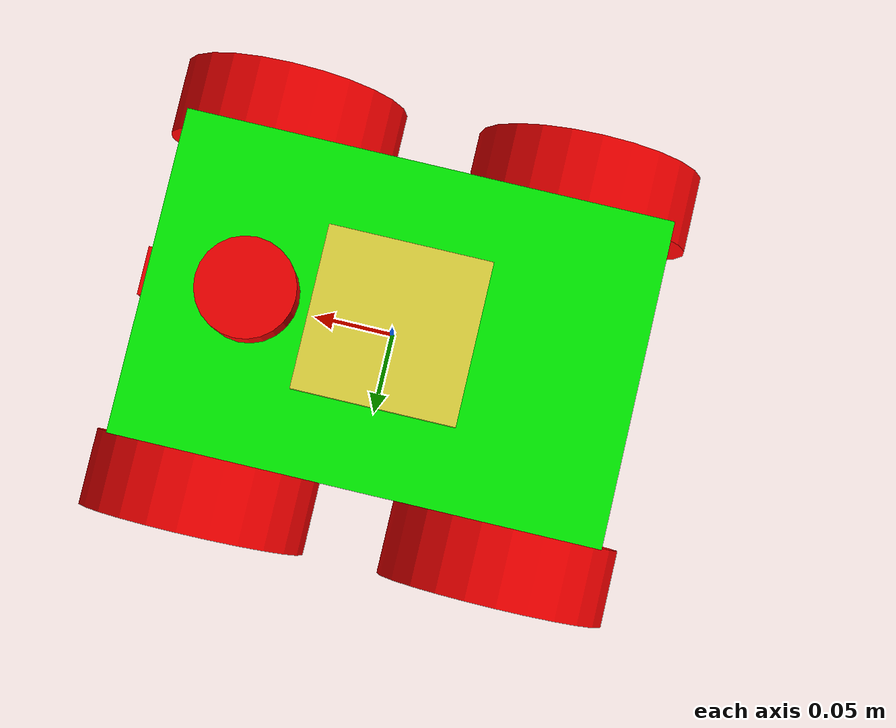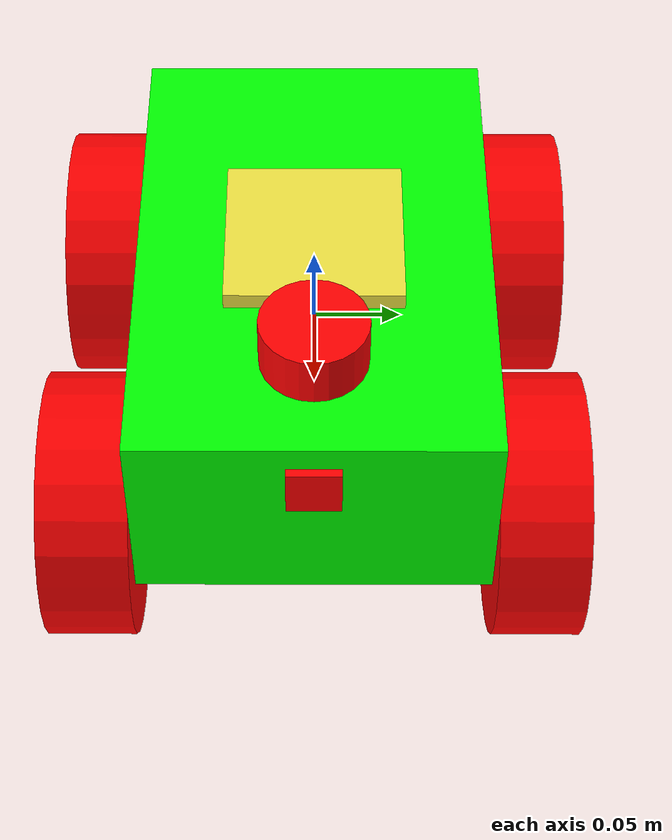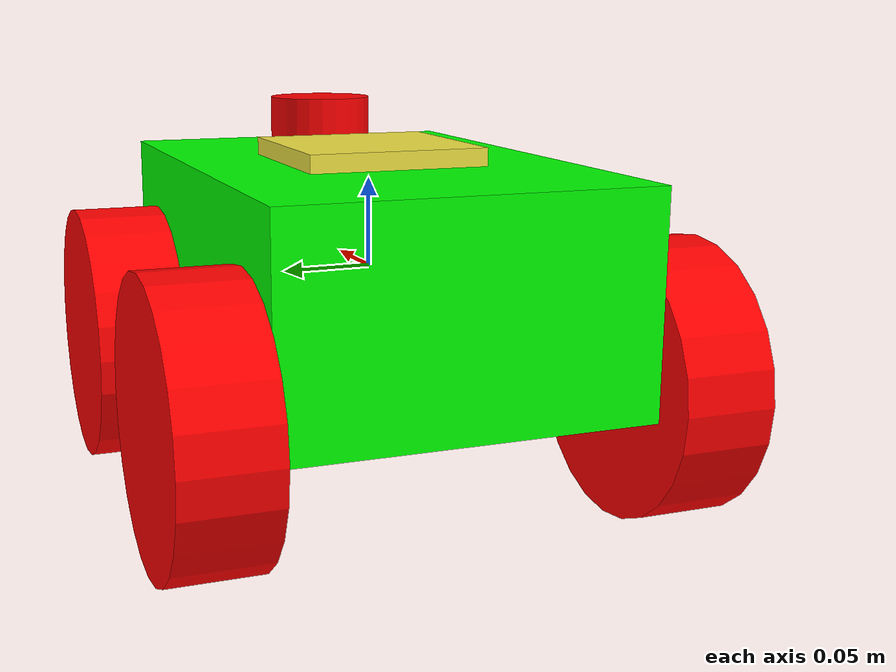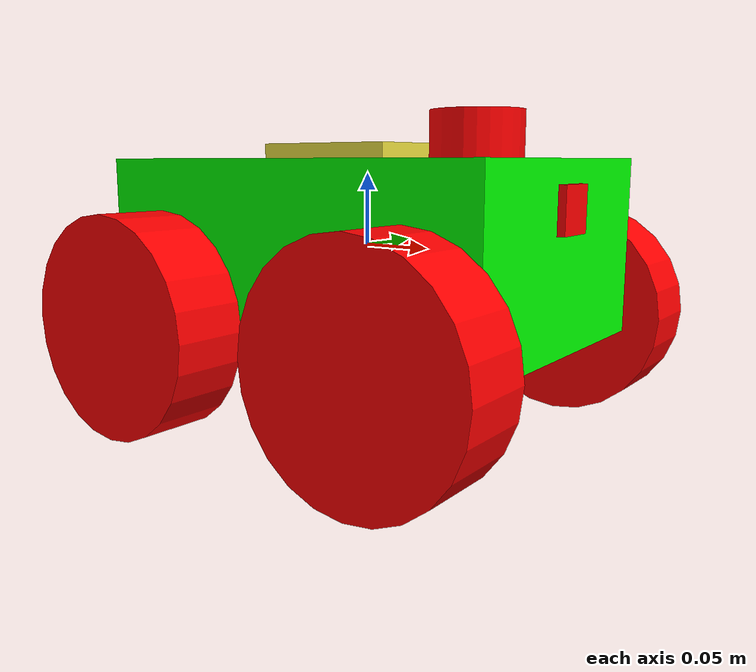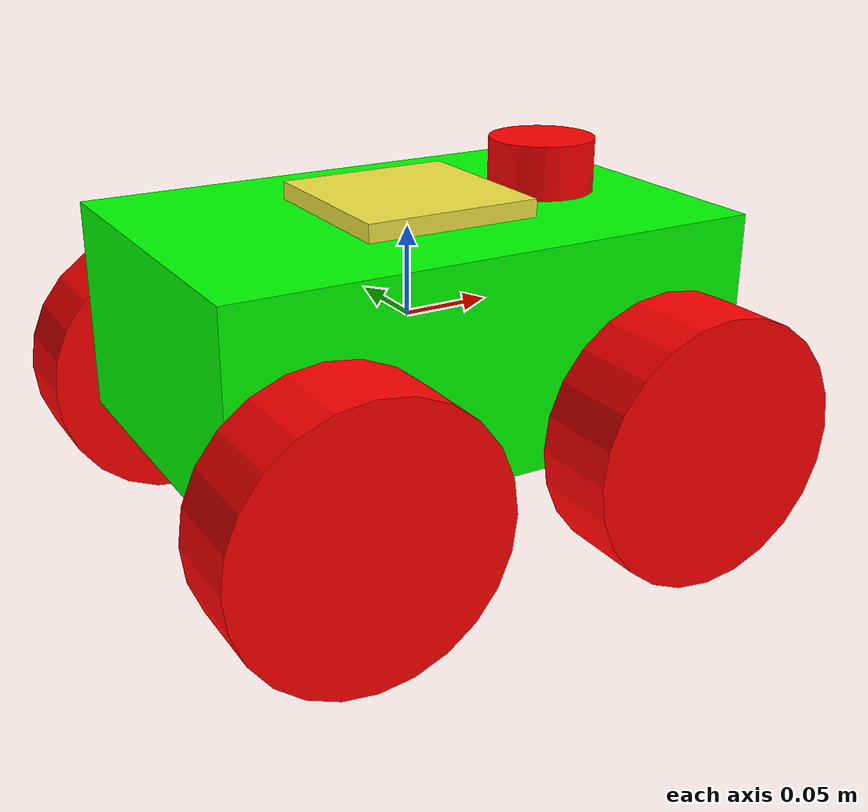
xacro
<?xml version="1.0"?>
<robot xmlns:xacro="http://www.ros.org/wiki/xacro" name="multi_robot">

    <xacro:arg name="robot_name" default="robot1/"/>
    <xacro:arg name="namespace" default="/robot1"/>

    <xacro:arg name="robot_material_name" default="Green"/>
    <xacro:arg name="robot_material_color_rgb" default="0 1 0 1"/>

    <xacro:include filename="$(find multi_robot)/urdf/description2/xacro/inertial_macros.xacro" />
    <xacro:include filename="$(find multi_robot)/urdf/description2/xacro/lidar.xacro" />
    <xacro:include filename="$(find multi_robot)/urdf/description2/xacro/camera.xacro" />
    <xacro:include filename="$(find multi_robot)/urdf/description2/xacro/imu_sensor.xacro" />

    <!-- xacro:include filename="$(find multi_robot)/description/xacro/depth_camera.xacro" / -->

    <xacro:include filename="$(find multi_robot)/urdf/description2/xacro/gazebo_control.xacro" />
    <xacro:include filename="$(find multi_robot)/urdf/description2/xacro/robot_core.xacro" />
</robot>

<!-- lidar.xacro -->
<robot xmlns:xacro="http://www.ros.org/wiki/xacro" >

    <joint name="$(arg robot_name)laser_joint" type="fixed">
        <parent link="$(arg robot_name)base_link"/>
        <child link="$(arg robot_name)lidar_link"/>
        <origin xyz="0.087 0 0.075" rpy="0 0 0"/>
    </joint>

    <link name="$(arg robot_name)lidar_link">
        <visual>
            <geometry>
                <cylinder radius="0.03" length="0.03"/>
            </geometry>
            <material name="red"/>
        </visual>
        <collision>
            <geometry>
                <cylinder radius="0.03" length="0.03"/>
            </geometry>
        </collision>
        <xacro:inertial_cylinder mass="0.1" length="0.04" radius="0.05">
            <origin xyz="0 0 0" rpy="0 0 0"/>
        </xacro:inertial_cylinder>
    </link>
    <gazebo reference="$(arg robot_name)lidar_link">
        <material>Gazebo/Red</material>
        <sensor name="lidar" type="ray">
            <pose> 0 0 0 0 0 0 </pose>
            <always_on>true</always_on>
            <visualize>true</visualize>
            <update_rate>5</update_rate>
            <ray>
                <scan>
                    <horizontal>
                        <samples>360</samples>
                        <min_angle>-3.14</min_angle>
                        <max_angle>3.14</max_angle>
                    </horizontal>
                </scan>
                <range>
                    <min>0.4</min>
                    <max>12</max>
                    <resolution>0.015000</resolution>
                </range>
                <noise>
                    <type>gaussian</type>
                    <mean>0.0</mean>
                    <stddev>0.01</stddev>
                </noise>
            </ray>
            <plugin name="scan" filename="libgazebo_ros_ray_sensor.so">
                <ros>
                    <!-- No remap as name is already "scan", plus I added extra space between dashes -->
                    <remapping>~/out:=$(arg namespace)/scan</remapping>
                    <namespace>$(arg namespace)/lidar</namespace>
                </ros>
                <!-- output_type is LaserScan vs old PointCloud and not a topic -->
                <output_type>sensor_msgs/LaserScan</output_type>
                <frame_name>$(arg robot_name)lidar_link</frame_name>
            </plugin>
        </sensor>
    </gazebo>
</robot>

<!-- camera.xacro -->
<robot xmlns:xacro="http://www.ros.org/wiki/xacro" >

    <joint name="$(arg robot_name)camera_joint" type="fixed">
        <parent link="$(arg robot_name)base_link"/>
        <child link="$(arg robot_name)camera_link"/>
        <origin xyz="0.15 0 0.03" rpy="0 0 0"/>
    </joint>

    <link name="$(arg robot_name)camera_link">
        <visual>
            <geometry>
                <box size="0.010 0.03 0.03"/>
            </geometry>
            <material name="red"/>
        </visual>
    </link>

    <joint name="$(arg robot_name)camera_optical_joint" type="fixed">
        <origin xyz="0 0 0" rpy="${-pi/2} 0 ${-pi/2}" />
        <parent link="$(arg robot_name)camera_link" />
        <child link="$(arg robot_name)camera_link_optical" />
    </joint>

    <link name="$(arg robot_name)camera_link_optical"></link>

    <gazebo reference="$(arg robot_name)camera_link">
        <material>Gazebo/Red</material>
        <sensor name="camera" type="camera">
            <pose> 0 0 0 0 0 0 </pose>
            <visualize>true</visualize>
            <update_rate>10</update_rate>
            <camera>
                <horizontal_fov>1.089</horizontal_fov>
                <image>
                    <format>R8G8B8</format>
                    <width>640</width>
                    <height>480</height>
                </image>
                <clip>
                    <near>0.05</near>
                    <far>8.0</far>
                </clip>
            </camera>
            <plugin name="camera_controller" filename="libgazebo_ros_camera.so">
                <ros>
                    <qos>
                        <topic name="$(arg namespace)/image_raw">
                            <publisher>
                                <reliability>reliable</reliability>
                            </publisher>
                        </topic>
                    </qos>
                </ros>
                <frame_name>$(arg robot_name)camera_link_optical</frame_name>
            </plugin>
        </sensor>
    </gazebo>
</robot>

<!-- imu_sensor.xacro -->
<robot xmlns:xacro="http://www.ros.org/wiki/xacro">

<link name="$(arg robot_name)imu_link">

  <visual>
    <geometry>
      <box size="0.1 0.1 0.1"/>
    </geometry>
  </visual>

  <collision>
    <geometry>
      <box size="0.1 0.1 0.1"/>
    </geometry>
  </collision>

  <xacro:inertial_box mass="0.0" x="0.0" y="0.0" z="0.0">
    <origin xyz="0 0 0" rpy="0 0 0"/>
  </xacro:inertial_box>

</link>

<joint name="$(arg robot_name)imu_joint" type="fixed">
  <parent link="$(arg robot_name)base_link"/>
  <child link="$(arg robot_name)imu_link"/>
  <origin xyz="0. 0. 0.02"  rpy="0 0 0"/>
</joint>

  <gazebo reference="$(arg robot_name)imu_link">
    <sensor name="imu_sensor" type="imu">
      <plugin filename="libgazebo_ros_imu_sensor.so" name="imu_plugin">
        <ros>
          <namespace>$(arg namespace)/imu</namespace>
          <remapping>~/out:=$(arg namespace)/imu</remapping>
        </ros>
        <initial_orientation_as_reference>false</initial_orientation_as_reference>
        <frame_name>imu_link</frame_name>
      </plugin>
      <always_on>true</always_on>
      <update_rate>100</update_rate>
      <visualize>true</visualize>
     <imu>
     	<angular_velocity>
     	  <x>
     	    <noise type="gaussian">
              <mean>0.0</mean>
              <stddev>2e-4</stddev>
              <bias_mean>0.0000075</bias_mean>
              <bias_stddev>0.0000008</bias_stddev>
            </noise>
          </x>
          <y>
            <noise type="gaussian">
              <mean>0.0</mean>
              <stddev>2e-4</stddev>
              <bias_mean>0.0000075</bias_mean>
              <bias_stddev>0.0000008</bias_stddev>
            </noise>
          </y>
          <z>
            <noise type="gaussian">
              <mean>0.0</mean>
              <stddev>2e-4</stddev>
              <bias_mean>0.0000075</bias_mean>
              <bias_stddev>0.0000008</bias_stddev>
            </noise>
          </z>
        </angular_velocity>
        <linear_acceleration>
          <x>
            <noise type="gaussian">
              <mean>0.0</mean>
              <stddev>1.7e-2</stddev>
              <bias_mean>0.1</bias_mean>
              <bias_stddev>0.001</bias_stddev>
            </noise>
          </x>
          <y>
            <noise type="gaussian">
              <mean>0.0</mean>
              <stddev>1.7e-2</stddev>
              <bias_mean>0.1</bias_mean>
              <bias_stddev>0.001</bias_stddev>
            </noise>
          </y>
          <z>
            <noise type="gaussian">
              <mean>0.0</mean>
              <stddev>1.7e-2</stddev>
              <bias_mean>0.1</bias_mean>
              <bias_stddev>0.001</bias_stddev>
            </noise>
          </z>
        </linear_acceleration>
      </imu>
    </sensor>
  </gazebo>

</robot>

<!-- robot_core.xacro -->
<robot xmlns:xacro="http://www.ros.org/wiki/xacro">

    <xacro:include filename="colors.xacro" />

    <xacro:property name="base_width" value="0.2"/>
    <xacro:property name="base_length" value="0.3"/>
    <xacro:property name="base_height" value="0.12"/>

    <xacro:property name="wheel_radius" value="0.075" />
    <xacro:property name="wheel_length" value="0.05" />
    <xacro:property name="wheel_color_name" value="wheel_red" />
    <xacro:property name="wheel_color_rgb" value="1 0 0 1" />
    <xacro:property name="wheel_zoff" value="0.05"/>

    <xacro:macro name="box_link" params="name size color color_rgb mass mass_x mass_y mass_z" >
        <link name="$(arg robot_name)${name}">
            <visual>
                <geometry>
                    <box size="${size}"/>
                    <!-- origin xyz="0.0 0.0"/ -->
                </geometry>

                <material name="${color}">
                    <color rgba="${color_rgb}"/>
                </material>
            </visual>
            <collision>
                <origin xyz="${mass_x/2} ${mass_y/2} ${mass_z/2}" rpy="0 0 0"/>
                <geometry>
                    <box size="${size}"/>
                </geometry>
            </collision>
            <xacro:inertial_box mass="${mass}" x="${mass_x}" y="${mass_y}" z="${mass_z}">
                <origin xyz="${mass_x} ${mass_y} ${mass_z}" rpy="0 0 0"/>
            </xacro:inertial_box>
        </link>
    </xacro:macro>

    <xacro:macro name="wheel" params="name mass">
        <link name="$(arg robot_name)${name}">
            <visual>
                <geometry>
                    <cylinder radius="${wheel_radius}" length="${wheel_length}" />
                </geometry>
                <material name="${wheel_color_name}">
                    <color rgba="${wheel_color_rgb}"/>
                </material>
            </visual>
            <collision>
                <geometry>
                    <cylinder length="${wheel_length}" radius="${wheel_radius}" />/>
                </geometry>
                <material name="blue"/>
            </collision>
            <xacro:inertial_cylinder mass="${mass}" length="${wheel_length}" radius="${wheel_radius}">
                <origin xyz="0 0 0" rpy="0 0 0"/>
            </xacro:inertial_cylinder>
        </link>
    </xacro:macro>

    <xacro:macro name="wheel_joint" params="name parent child xyz ">
        <joint name="$(arg robot_name)${name}" type="continuous">
            <parent link="$(arg robot_name)${parent}" />
            <child link="$(arg robot_name)${child}" />
            <origin xyz="${xyz}" rpy="${-pi/2} 0 0"/>
            <axis rpy="0 0 0" xyz="0 0 1"/>
        </joint>
    </xacro:macro>

    <!-- Robot Description -->

    <!-- link name="base_footprint"/ -->

    <xacro:box_link name="base_link" size="${base_length} ${base_width} ${base_height}"
        color="$(arg robot_material_name)" color_rgb="$(arg robot_material_color_rgb)"
        mass="0.3" mass_x="0.1" mass_y="0.11" mass_z="0.05"/>

   <!-- Robot Footprint -->
   <xacro:box_link name="base_footprint" size="0.0 0.0 0.0" color="green" color_rgb="0 1 0 1"
        mass="0.0" mass_x="0.0" mass_y="0.0" mass_z="0.0"/>

  <joint name="$(arg robot_name)base_joint" type="fixed">
    <parent link="$(arg robot_name)base_link"/>
    <child link="$(arg robot_name)base_footprint"/>
    <origin xyz="0.0 0.0 ${-(wheel_radius+wheel_zoff)}" rpy="0 0 0"/>
  </joint>

    <xacro:wheel name="right_wheel_frontside" mass="0.1" />
    <xacro:wheel_joint name="base_link_right_wheel_frontside" parent="base_link"
        child="right_wheel_frontside" xyz="${base_length/3} ${-(base_width/2 + wheel_length/2)} ${-wheel_zoff}"  />

    <xacro:wheel name="right_wheel_backside" mass="0.1" />
    <xacro:wheel_joint name="base_link_right_wheel_backside" parent="base_link"
        child="right_wheel_backside" xyz="${-base_length/3} ${-(base_width/2 + wheel_length/2)} ${-wheel_zoff}" />

    <xacro:wheel name="left_wheel_frontside" mass="0.1" />
    <xacro:wheel_joint name="base_link_left_wheel_frontside" parent="base_link"
        child="left_wheel_frontside" xyz="${base_length/3} ${(base_width/2 + wheel_length/2)} ${-wheel_zoff}" />

    <xacro:wheel name="left_wheel_backside" mass="0.1" />
    <xacro:wheel_joint name="base_link_left_wheel_backside" parent="base_link"
        child="left_wheel_backside" xyz="${-base_length/3} ${(base_width/2 + wheel_length/2)} ${-wheel_zoff}" />

    <!-- Gazebo Colors -->
    <gazebo reference="$(arg robot_name)base_link">
        <material>Gazebo/$(arg robot_material_name)</material>
    </gazebo>
    <gazebo reference="$(arg robot_name)right_wheel_frontside">
        <material>Gazebo/Red</material>
    </gazebo>
    <gazebo reference="$(arg robot_name)right_wheel_backside">
        <material>Gazebo/Red</material>
    </gazebo>
    <gazebo reference="$(arg robot_name)left_wheel_frontside">
        <material>Gazebo/Red</material>
    </gazebo>
    <gazebo reference="$(arg robot_name)left_wheel_backside">
        <material>Gazebo/Red</material>
    </gazebo>

</robot>

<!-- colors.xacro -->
<robot xmlns:xacro="http://www.ros.org/wiki/xacro">

    <material name="white">
        <color rgba="1 1 1 1"/>
    </material>

    <material name="orange">
        <color rgba="1 0.3 0.1 1"/>
    </material>

    <material name="blue">
        <color rgba="0.2 0.2 1 1"/>
    </material>

    <material name="black">
        <color rgba="0 0 0 1"/>
    </material>

    <material name="red">
        <color rgba="1 0 0 1"/>
    </material>

</robot>
